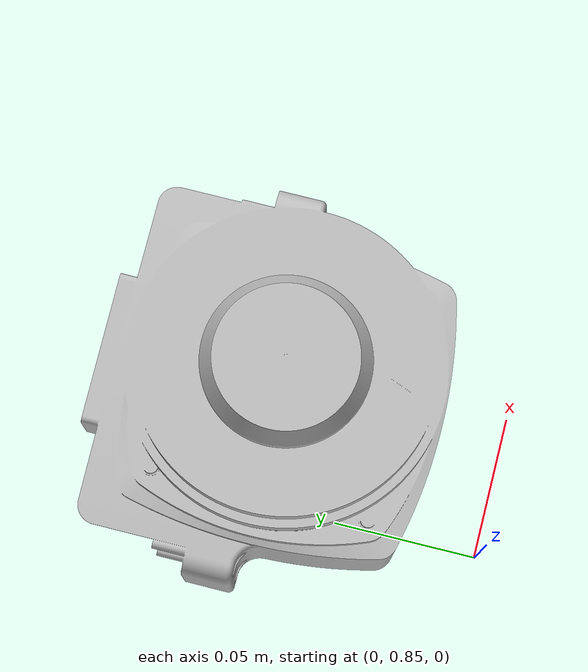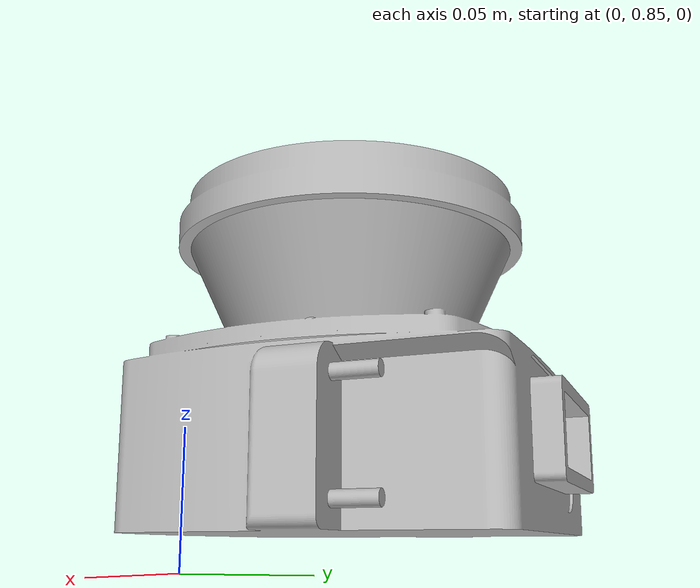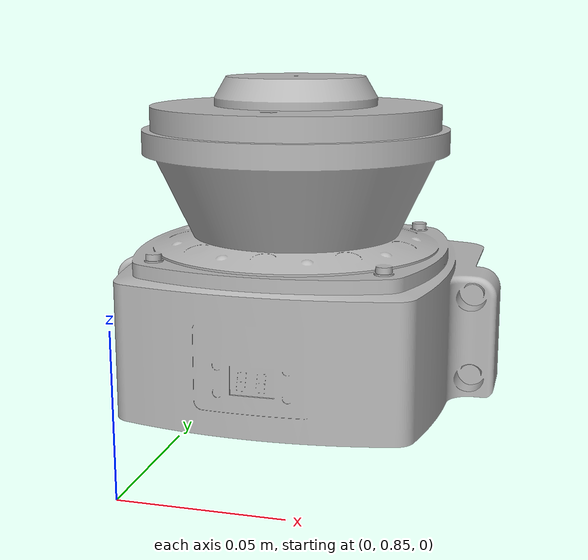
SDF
<?xml version="1.0" ?>
<sdf version="1.4">
  <model name="omron">
    <pose>0 1 0 1.5707 0 0 </pose>
    <link name="sensor">
      <inertial>
      <mass>1.3</mass>
      <pose> 0.03 0.04 0.05 0 0 0</pose>
        <inertia>
          <ixx>0.001567</ixx>
          <iyy>0.001594</iyy>
          <izz>0.001532</izz>
          <ixy>0</ixy>
          <ixz>0</ixz>
          <iyz>-0.0000</iyz>
        </inertia>
      </inertial>
      <collision name="collision">
        <geometry>
          <mesh>
            <uri>model://omron/meshes/omron.dae</uri>
            <scale>10 10 10</scale>
          </mesh>
        </geometry>
      </collision>
      <visual name="visual">
        <geometry>
          <mesh>
            <uri>model://omron/meshes/omron.dae</uri>
            <scale>10 10 10</scale>
          </mesh>
        </geometry>
      </visual>
        <!-- Add a ray sensor, and give it a name -->
      <sensor type="ray" name="sensor">

          <pose>0.03 0.1 0.05 1.5707 0 0</pose>

          <!-- Enable visualization to see the rays in the GUI -->
          <visualize>true</visualize>

          <!-- Set the update rate of the sensor -->
          <update_rate>30</update_rate>

          <ray>

            <!-- The scan element contains the horizontal and vertical beams.
                 We are leaving out the vertical beams for this tutorial. -->
            <scan>

              <!-- The horizontal beams -->
              <horizontal>
                <!-- The omron has 70 beams(samples) -->
                <samples>70</samples>

                <resolution>1</resolution>

                <!-- Minimum angle in radians -->
                <min_angle>-0.785398163</min_angle>

                <!-- Maximum angle in radians -->
                <max_angle>3.92699</max_angle>
              </horizontal>
            </scan>

            <!-- Range defines characteristics of an individual beam -->
            <range>

              <!-- Minimum distance of the beam -->
              <min>1.75</min>

              <!-- Maximum distance of the beam -->
              <max>10</max>

              <!-- Linear resolution of the beam -->
              <resolution>0.4</resolution>
            </range>

              <noise>
                  <!-- Use gaussian noise -->
                <type>gaussian</type>
                <mean>0.0</mean>
                <stddev>0.02</stddev>
                </noise>
              </ray>
      </sensor>

    </link>
  </model>
</sdf>
